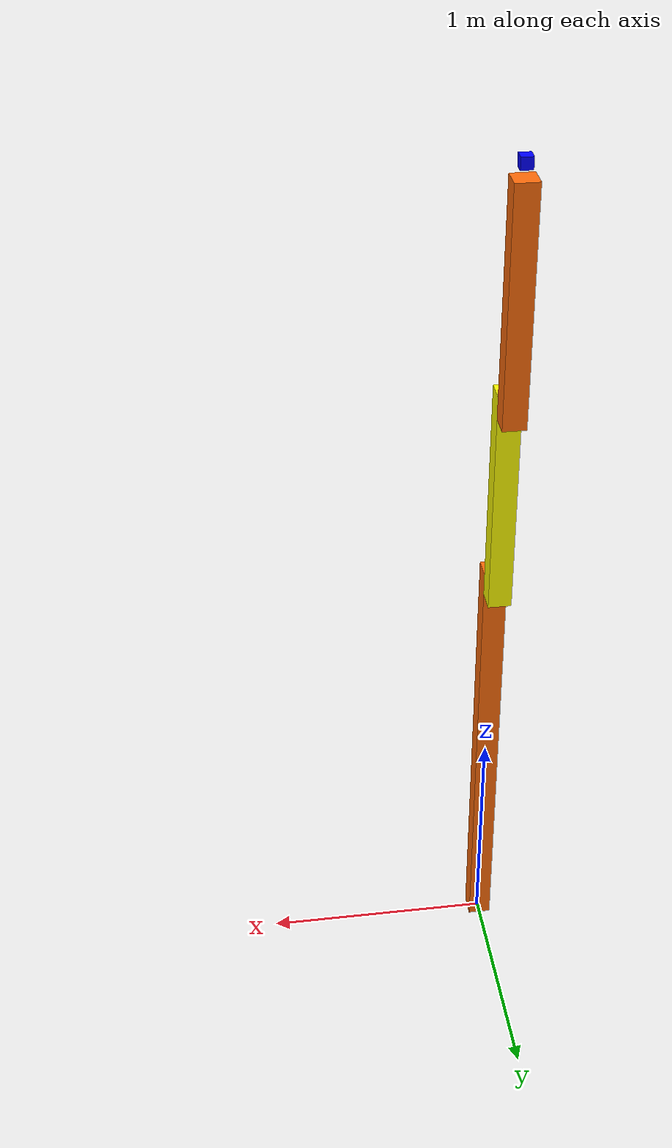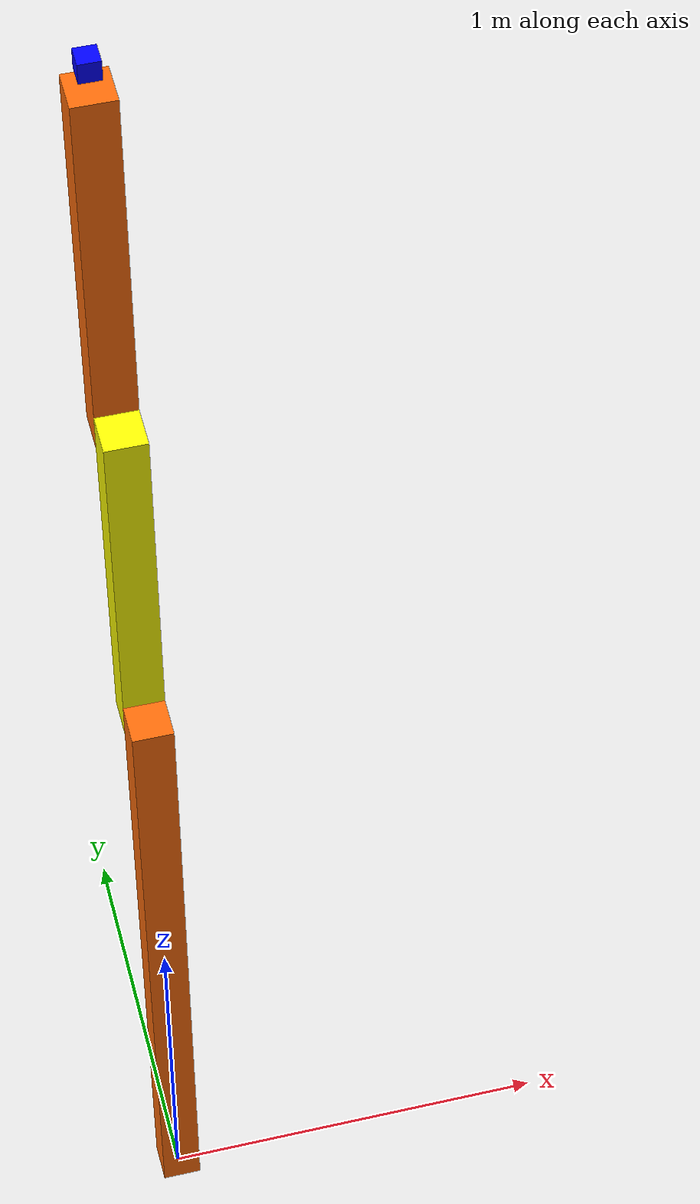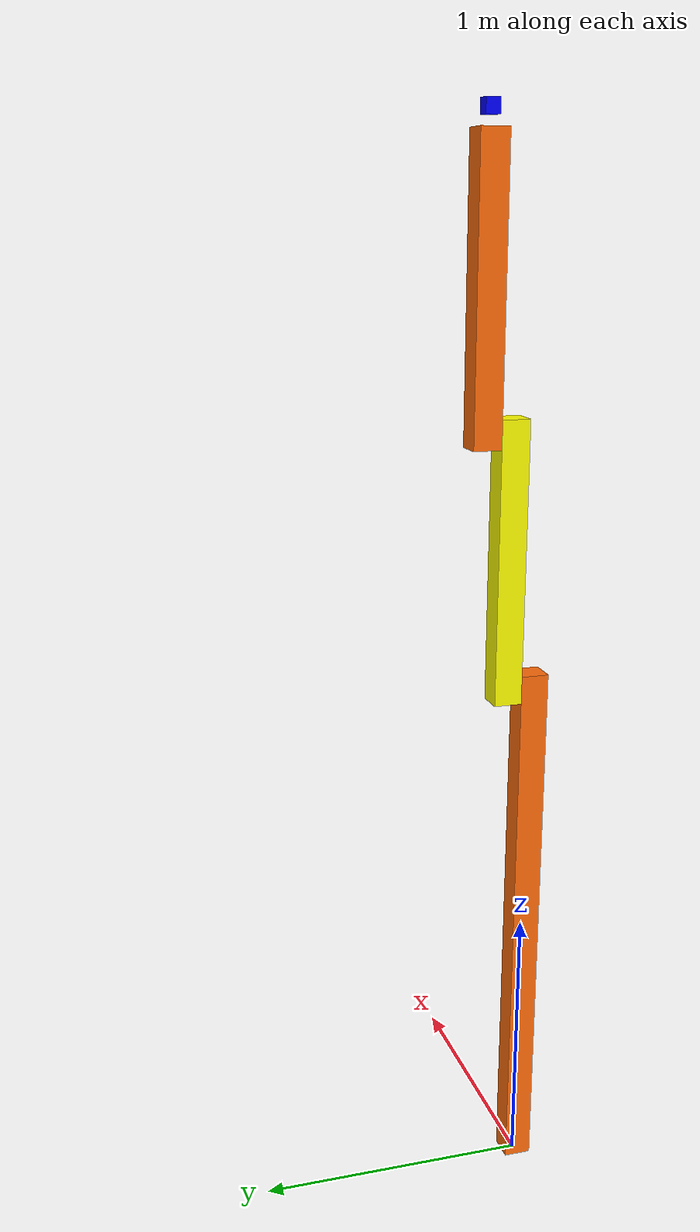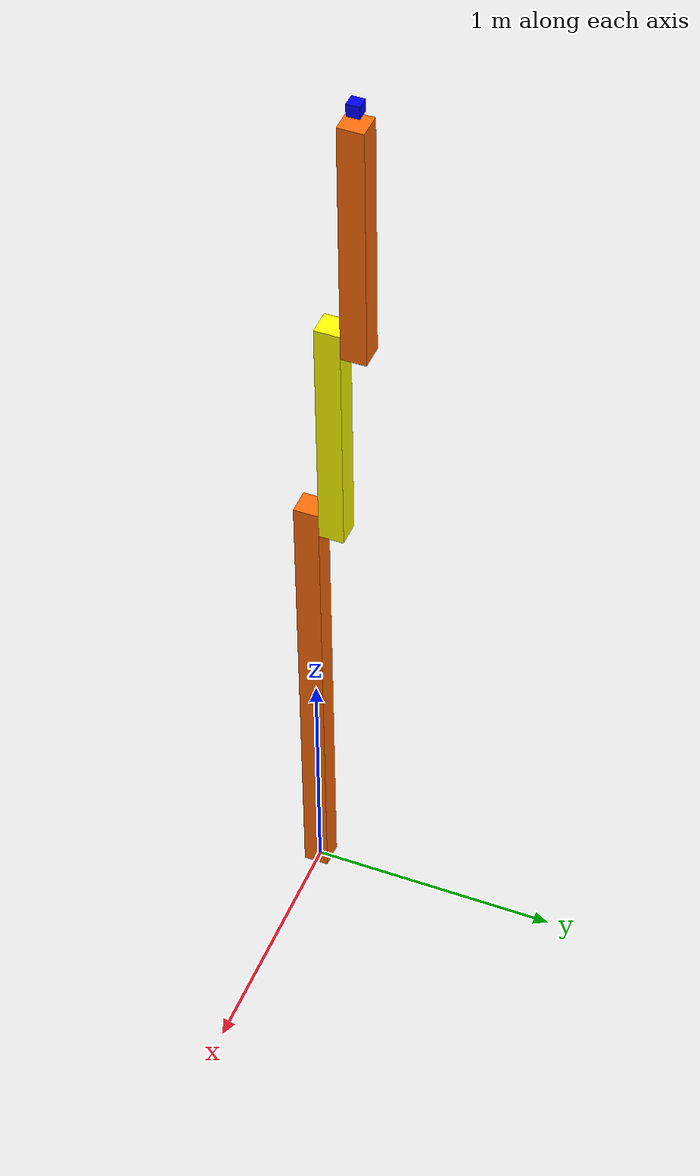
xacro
<?xml version="1.0"?>
<!-- Revolute-Revolute Manipulator -->
<robot name="rrbot" xmlns:xacro="http://www.ros.org/wiki/xacro">

  <xacro:include filename="$(find rrbot_description)/urdf/rrbot.urdf.xacro"/>
  <xacro:include filename="$(find rrbot_gazebo)/urdf/rrbot.gazebo.xacro"/>
  <xacro:include filename="$(find rrbot_gazebo)/urdf/rrbot.ros2_control.xacro"/>

</robot>

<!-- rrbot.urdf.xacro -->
<!-- Revolute-Revolute Manipulator -->
<!--
Copied and modified from ROS1 example -
https://github.com/ros-simulation/gazebo_ros_demos/blob/kinetic-devel/rrbot_description/urdf/rrbot.xacro
-->
<robot xmlns:xacro="http://www.ros.org/wiki/xacro" name="simple_rrbot">
  <xacro:arg name="prefix" default="" />

  <!-- Import RRBot macro -->
  <xacro:include filename="$(find rrbot_description)/urdf/rrbot_description.urdf.xacro" />

  <!-- Import Rviz colors -->
  <xacro:include filename="$(find rrbot_description)/urdf/rrbot.materials.xacro" />

  <!-- Used for fixing robot -->
  <link name="world"/>

  <xacro:rrbot parent="world" prefix="$(arg prefix)">
    <origin xyz="0 0 0" rpy="0 0 0" />
  </xacro:rrbot>

</robot>

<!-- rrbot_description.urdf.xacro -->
<robot xmlns:xacro="http://www.ros.org/wiki/xacro">

  <xacro:macro name="rrbot" params="parent prefix *origin">
    <!-- 普通参数（字符串类型）`parent`，`prefix`。 block 参数 `*origin` -->

    <!-- Constants for robot dimensions -->
    <xacro:property name="mass" value="1" /> <!-- arbitrary value for mass -->
    <xacro:property name="width" value="0.1" /> <!-- Square dimensions (widthxwidth) of beams -->
    <xacro:property name="height1" value="2" /> <!-- Link 1 -->
    <xacro:property name="height2" value="1" /> <!-- Link 2 -->
    <xacro:property name="height3" value="1" /> <!-- Link 3 -->
    <xacro:property name="axel_offset" value="0.05" /> <!-- Space btw top of beam and the each joint -->

    <joint name="${prefix}base_joint" type="fixed">
      <xacro:insert_block name="origin" />
      <parent link="${parent}" />
      <child link="${prefix}base_link" />
    </joint>

    <!-- Base Link -->
    <link name="${prefix}base_link">
      <collision>
        <origin xyz="0 0 ${height1/2}" rpy="0 0 0" />
        <geometry>
          <box size="${width} ${width} ${height1}" />
        </geometry>
      </collision>

      <visual>
        <origin xyz="0 0 ${height1/2}" rpy="0 0 0" />
        <geometry>
          <box size="${width} ${width} ${height1}" />
        </geometry>
        <material name="orange" />
      </visual>

      <inertial>
        <origin xyz="0 0 ${height1/2}" rpy="0 0 0" />
        <mass value="${mass}" />
        <inertia
          ixx="${mass / 12.0 * (width*width + height1*height1)}" ixy="0.0" ixz="0.0"
          iyy="${mass / 12.0 * (height1*height1 + width*width)}" iyz="0.0"
          izz="${mass / 12.0 * (width*width + width*width)}" />
      </inertial>
    </link>

    <joint name="${prefix}joint1" type="continuous">
      <parent link="${prefix}base_link" />
      <child link="${prefix}link1" />
      <origin xyz="0 ${width} ${height1 - axel_offset}" rpy="0 0 0" />
      <axis xyz="0 1 0" />
      <dynamics damping="0.7" />
      <limit effort="100" velocity="1.0" />
    </joint>

    <!-- Middle Link -->
    <link name="${prefix}link1">
      <collision>
        <origin xyz="0 0 ${height2/2 - axel_offset}" rpy="0 0 0" />
        <geometry>
          <box size="${width} ${width} ${height2}" />
        </geometry>
      </collision>

      <visual>
        <origin xyz="0 0 ${height2/2 - axel_offset}" rpy="0 0 0" />
        <geometry>
          <box size="${width} ${width} ${height2}" />
        </geometry>
        <material name="yellow" />
      </visual>

      <inertial>
        <origin xyz="0 0 ${height2/2 - axel_offset}" rpy="0 0 0" />
        <mass value="${mass}" />
        <inertia
          ixx="${mass / 12.0 * (width*width + height2*height2)}" ixy="0.0" ixz="0.0"
          iyy="${mass / 12.0 * (height2*height2 + width*width)}" iyz="0.0"
          izz="${mass / 12.0 * (width*width + width*width)}" />
      </inertial>
    </link>

    <joint name="${prefix}joint2" type="continuous">
      <parent link="${prefix}link1" />
      <child link="${prefix}link2" />
      <origin xyz="0 ${width} ${height2 - axel_offset*2}" rpy="0 0 0" />
      <axis xyz="0 1 0" />
      <dynamics damping="0.7" />
      <limit effort="100" velocity="1.0" />
    </joint>

    <!-- Top Link -->
    <link name="${prefix}link2">
      <collision>
        <origin xyz="0 0 ${height3/2 - axel_offset}" rpy="0 0 0" />
        <geometry>
          <box size="${width} ${width} ${height3}" />
        </geometry>
      </collision>

      <visual>
        <origin xyz="0 0 ${height3/2 - axel_offset}" rpy="0 0 0" />
        <geometry>
          <box size="${width} ${width} ${height3}" />
        </geometry>
        <material name="orange" />
      </visual>

      <inertial>
        <origin xyz="0 0 ${height3/2 - axel_offset}" rpy="0 0 0" />
        <mass value="${mass}" />
        <inertia
          ixx="${mass / 12.0 * (width*width + height3*height3)}" ixy="0.0" ixz="0.0"
          iyy="${mass / 12.0 * (height3*height3 + width*width)}" iyz="0.0"
          izz="${mass / 12.0 * (width*width + width*width)}" />
      </inertial>
    </link>

    <joint name="${prefix}tool_joint" type="fixed">
      <origin xyz="0 0 1" rpy="0 0 0" />
      <parent link="${prefix}link2" />
      <child link="${prefix}tool_link" />
    </joint>

    <!-- Tool Link -->
    <link name="${prefix}tool_link">
    </link>

  </xacro:macro>

</robot>

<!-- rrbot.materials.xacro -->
<!--
Copied from ROS1 example -
https://github.com/ros-simulation/gazebo_ros_demos/blob/kinetic-devel/rrbot_description/urdf/materials.xacro
-->
<robot>

  <material name="black">
    <color rgba="0.0 0.0 0.0 1.0" />
  </material>

  <material name="blue">
    <color rgba="0.0 0.0 0.8 1.0" />
  </material>

  <material name="green">
    <color rgba="0.0 0.8 0.0 1.0" />
  </material>

  <material name="grey">
    <color rgba="0.2 0.2 0.2 1.0" />
  </material>

  <material name="orange">
    <color rgba="${255/255} ${108/255} ${10/255} 1.0" />
  </material>

  <material name="brown">
    <color rgba="${222/255} ${207/255} ${195/255} 1.0" />
  </material>

  <material name="red">
    <color rgba="0.8 0.0 0.0 1.0" />
  </material>

  <material name="yellow">
    <color rgba="1.0 1.0 0.0 1.0" />
  </material>

  <material name="white">
    <color rgba="1.0 1.0 1.0 1.0" />
  </material>

</robot>

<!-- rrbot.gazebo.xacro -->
<!-- Revolute-Revolute Manipulator -->
<robot name="rrbot" xmlns:xacro="http://www.ros.org/wiki/xacro">

  <xacro:property name="M_PI" value="3.1415926535897931" />
  <xacro:property name="d435_cam_width" value="0.090"/>
  <xacro:property name="d435_cam_height" value="0.025"/>
  <xacro:property name="d435_cam_depth" value="0.02505"/>
  <xacro:property name="d435_cam_depth_to_infra1_offset" value="0.0"/>
  <xacro:property name="d435_cam_depth_to_infra2_offset" value="-0.050"/>
  <xacro:property name="d435_cam_depth_to_color_offset" value="0.015"/>
  <xacro:property name="camera_tilt_angle_deg" value="5"/>

<link name="tip">
  <!-- Visual representation -->
  <visual>
    <geometry>
      <box size="0.05 0.05 0.05"/>
    </geometry>
    <material name="Blue">
      <color rgba="0 0 1 1"/>
    </material>
  </visual>

  <!-- Collision representation -->
  <collision>
    <geometry>
      <box size="0.05 0.05 0.05"/>
    </geometry>
  </collision>

  <!-- Inertial properties -->
  <inertial>
    <mass value="0.1"/>
    <origin xyz="0 0 0" rpy="0 0 0"/>
    <inertia
      ixx="0.0000020833" ixy="0.0" ixz="0.0"
      iyy="0.0000020833" iyz="0.0"
      izz="0.0000020833"/>
  </inertial>
</link>

  <joint name="tip_joint" type="fixed">
    <parent link="tool_link"/>
    <child link="tip" />
   <origin xyz="0 0 0.01" rpy="0.0 0 0"/>
  </joint>

  <joint name="camera_joint" type="fixed">
    <parent link="tip"/>
    <child link="camera_link" />
   <origin xyz="0 0 0" rpy="0.0 0 0"/>

  </joint>

  <link name="camera_link">
  </link>

  <joint name="camera_depth_joint" type="fixed">
    <origin xyz="0 0 0" rpy="0 0 0"/>
    <parent link="camera_link"/>
    <child link="camera_depth_frame" />
  </joint>
  <link name="camera_depth_frame"/>

  <joint name="camera_depth_optical_joint" type="fixed">
    <origin xyz="0 0 0" rpy="${-M_PI/2} 0 ${-M_PI/2}" />
    <parent link="camera_depth_frame" />
    <child link="camera_depth_optical_frame" />
  </joint>
  <link name="camera_depth_optical_frame"/>

  <joint name="camera_infra1_joint" type="fixed">
    <origin xyz="0 ${d435_cam_depth_to_infra1_offset} 0" rpy="0 0 0" />
    <parent link="camera_link" />
    <child link="camera_infra1_frame" />
  </joint>
  <link name="camera_infra1_frame"/>

  <joint name="camera_infra1_optical_joint" type="fixed">
    <origin xyz="0 0 0" rpy="${-M_PI/2} 0 ${-M_PI/2}" />
    <parent link="camera_infra1_frame" />
    <child link="camera_infra1_optical_frame" />
  </joint>
  <link name="camera_infra1_optical_frame"/>

  <joint name="camera_infra2_joint" type="fixed">
    <origin xyz="0 ${d435_cam_depth_to_infra2_offset} 0" rpy="0 0 0" />
    <parent link="camera_link" />
    <child link="camera_infra2_frame" />
  </joint>
  <link name="camera_infra2_frame"/>

  <joint name="camera_infra2_optical_joint" type="fixed">
    <origin xyz="0 0 0" rpy="${-M_PI/2} 0 ${-M_PI/2}" />
    <parent link="camera_infra2_frame" />
    <child link="camera_infra2_optical_frame" />
  </joint>
  <link name="camera_infra2_optical_frame"/>

  <joint name="camera_color_joint" type="fixed">
    <origin xyz="0 ${d435_cam_depth_to_color_offset} 0" rpy="0 0 0" />
    <parent link="camera_link" />
    <child link="camera_color_frame" />
  </joint>
  <link name="camera_color_frame"/>

  <joint name="camera_color_optical_joint" type="fixed">
    <origin xyz="0 0 0" rpy="${-M_PI/2} 0 ${-M_PI/2}" />
    <parent link="camera_color_frame" />
    <child link="camera_color_optical_frame" />
  </joint>
  <link name="camera_color_optical_frame"/>

  <gazebo reference="camera_link">
    <sensor name="camera" type="rgbd_camera">
      <camera>
        <horizontal_fov>1.5184</horizontal_fov>
        <image>
          <width>640</width>
          <height>480</height>
        </image>
        <clip>
          <near>0.05</near>
          <far>8.0</far>
        </clip>
      </camera>
      <always_on>1</always_on>
      <gz_frame_id>camera_link</gz_frame_id>
      <topic>camera</topic>
      <update_rate>5</update_rate>
      <visualize>true</visualize>
    </sensor>
  </gazebo>

   <gazebo>
        <plugin filename="gz-sim-sensors-system" name="gz::sim::systems::Sensors">
            <render_engine>ogre2</render_engine>
        </plugin>
  </gazebo>

  <gazebo reference="tip">
        <sensor name='gpu_lidar' type='gpu_lidar'>
          <pose>0 0 0 0 0 0</pose>
          <topic>scan</topic>
          <gz_frame_id>tip</gz_frame_id>
          <update_rate>10</update_rate>
          <lidar>
            <scan>
              <horizontal>
                <samples>640</samples>
                <resolution>1</resolution>
                <min_angle>-1.396263</min_angle>
                <max_angle>1.396263</max_angle>
              </horizontal>
              <vertical>
                <samples>1</samples>
                <resolution>1</resolution>
                <min_angle>0.0</min_angle>
                <max_angle>0.0</max_angle>
              </vertical>
            </scan>
            <range>
              <min>0.08</min>
              <max>10.0</max>
              <resolution>0.01</resolution>
            </range>
          </lidar>
          <visualize>true</visualize>
        </sensor>
  </gazebo>

 <!-- Link1 -->
  <gazebo reference="link1">
    <material>
      <diffuse> 1 0.423529412 0.039215686 1</diffuse>
      <ambient> 1 0.423529412 0.039215686 1</ambient>
      <specular>1 0.423529412 0.039215686 1</specular>
    </material>
  </gazebo>

  <!-- Link2 -->
  <gazebo reference="link2">
    <mu1>0.2</mu1>
    <mu2>0.2</mu2>
    <material>
      <diffuse> 0 0 0 1</diffuse>
      <ambient> 0 0 0 1</ambient>
      <specular>0 0 0 1</specular>
    </material>
  </gazebo>

</robot>
